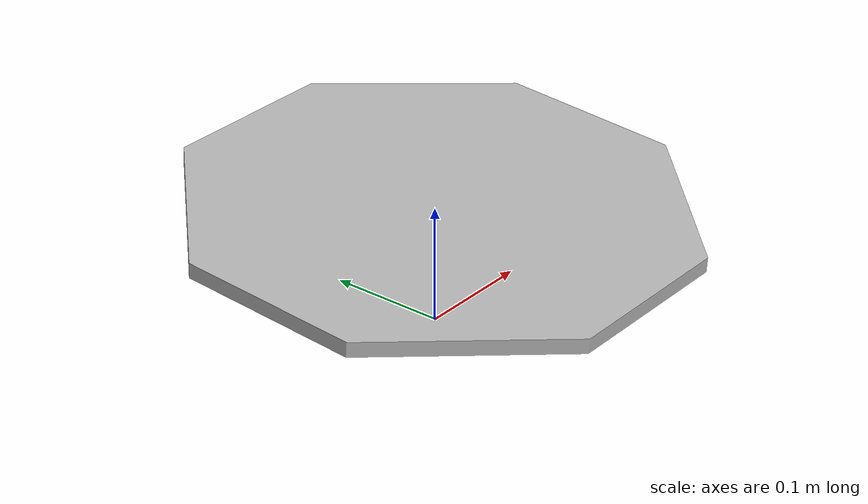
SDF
<?xml version="1.0" ?>
<sdf version="1.5">
  <model name="stop">
    <static>true</static>
    <link name="link">
      <collision name="collision">
        <geometry>
          <mesh>
            <uri>model://stop/meshes/stop.dae</uri>
          </mesh>
        </geometry>
      </collision>
      <visual name="mesh">
        <geometry>
          <mesh>
            <uri>model://stop/meshes/stop.dae</uri>
          </mesh>
        </geometry>
        <material>
          <script>
            <uri>model://stop/materials/scripts</uri>
            <uri>model://stop/materials/textures</uri>
            <name>vrc/stop</name>
          </script>
        </material>
      </visual>
    </link>
  </model>
</sdf>
